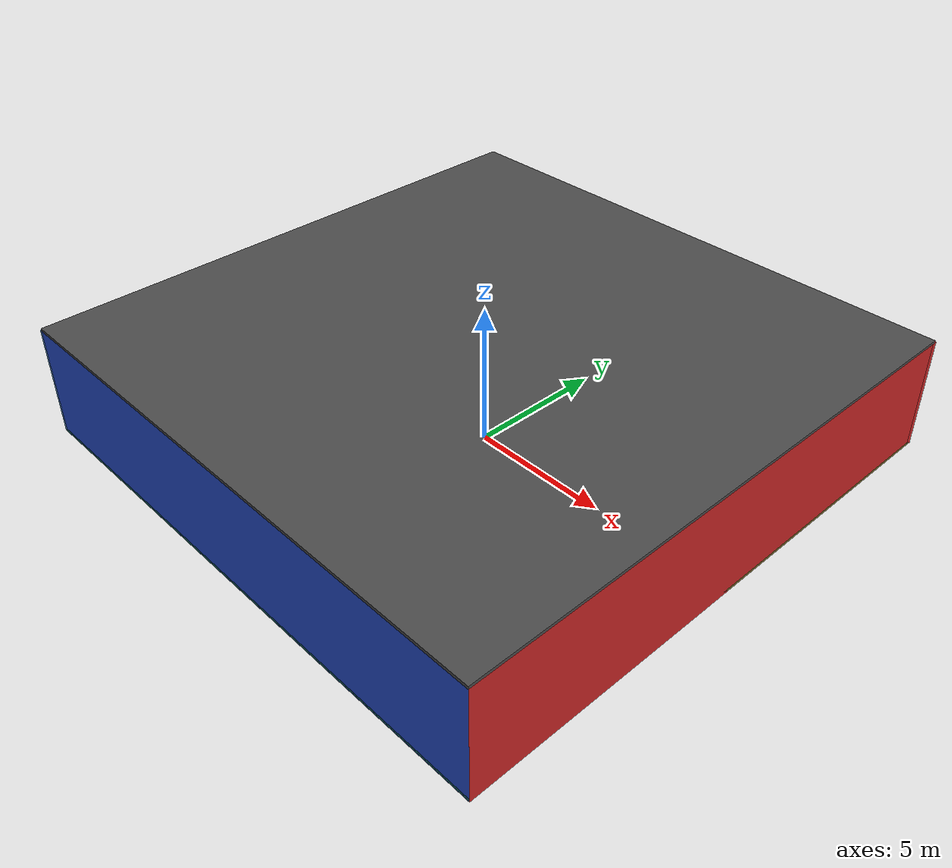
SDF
<sdf version="1.4">
 <world name="default">
  <physics type="ode">
   <max_step_size>0.001</max_step_size>
   <real_time_factor>1</real_time_factor>
   <real_time_update_rate>1000</real_time_update_rate>
   <gravity>0 0 -9.8</gravity>
  </physics>
  <scene><ambient>0.4 0.4 0.4 1</ambient><background>0.7 0.7 0.7 1</background><shadows>1</shadows></scene>
  <model name="Surrounding">
   <static>1</static>
   <link name="Ceiling">
    <collision name="Ceiling_Collision"><geometry><box><size>20 20 0.1</size></box></geometry></collision>
    <visual name="Ceiling_Visual">
     <geometry><box><size>20 20 0.1</size></box></geometry>
     <material>
      <script><uri>file://media/materials/scripts/gazebo.material</uri><name>Gazebo/DarkGrey</name></script>
     </material>
    </visual>
    <pose>0 0 4.05 0 0 0</pose>
   </link>
   <link name="Wall_South">
    <collision name="Wall_South_Collision">
     <geometry><box><size>20 0 4</size></box></geometry>
     <pose>0 0 2 0 -0 0</pose>
    </collision>
    <visual name="Wall_South_Visual">
     <pose>0 0 2 0 -0 0</pose>
     <geometry><box><size>20 0 4</size></box></geometry>
     <material>
      <script><uri>file://media/materials/scripts/gazebo.material</uri><name>Gazebo/BlueGlow</name></script>
     </material>
    </visual>
    <velocity_decay><linear>0</linear><angular>0</angular></velocity_decay>
    <pose>0 -10 0 0 -0 0</pose>
   </link>
   <link name="Wall_East">
    <collision name="Wall_21_Collision">
     <geometry><box><size>20 0 4</size></box></geometry>
     <pose>0 0 2 0 -0 0</pose>
    </collision>
    <visual name="Wall_21_Visual">
     <pose>0 0 2 0 -0 0</pose>
     <geometry><box><size>20 0 4</size></box></geometry>
     <material>
      <script><uri>file://media/materials/scripts/gazebo.material</uri><name>Gazebo/Red</name></script>
     </material>
    </visual>
    <velocity_decay><linear>0</linear><angular>0</angular></velocity_decay>
    <pose>10 0 0 0 -0 1.5708</pose>
   </link>
   <link name="Wall_North">
    <collision name="Wall_22_Collision">
     <geometry><box><size>20 0.2 4</size></box></geometry>
     <pose>0 0 2 0 -0 0</pose>
    </collision>
    <visual name="Wall_22_Visual">
     <pose>0 0 2 0 -0 0</pose>
     <geometry><box><size>20 0.2 4</size></box></geometry>
     <material>
      <script><uri>file://media/materials/scripts/gazebo.material</uri><name>Gazebo/RedGlow</name></script>
     </material>
    </visual>
    <velocity_decay><linear>0</linear><angular>0</angular></velocity_decay>
    <pose>0 10 0 0 -0 0</pose>
   </link>
   <link name="Wall_West">
    <collision name="Wall_23_Collision">
     <geometry><box><size>20 0.2 4</size></box></geometry>
     <pose>0 0 2 0 -0 0</pose>
    </collision>
    <visual name="Wall_23_Visual">
     <pose>0 0 2 0 -0 0</pose>
     <geometry><box><size>20 0.2 4</size></box></geometry>
     <material>
      <script><uri>file://media/materials/scripts/gazebo.material</uri><name>Gazebo/SkyBlue</name></script>
     </material>
    </visual>
    <velocity_decay><linear>0</linear><angular>0</angular></velocity_decay>
    <pose>-10 0 0 0 0 -1.5708</pose>
   </link>
   <link name="Ground_link">
    <collision name="collision">
     <pose>0 0 .05 0 -0 0</pose>
     <geometry><box><size>20 20 0.1</size></box></geometry>
    </collision>
    <visual name="visual">
     <pose>0 0 .05 0 -0 0</pose>
     <geometry><box><size>20 20 0.1</size></box></geometry>
     <material>
      <script><uri>file://media/materials/scripts/gazebo.material</uri><name>Gazebo/GreenTransparent</name></script>
     </material>
    </visual>
   </link>
   <static>1</static>
  </model>
  <spherical_coordinates>
   <surface_model>EARTH_WGS84</surface_model>
   <latitude_deg>0</latitude_deg>
   <longitude_deg>0</longitude_deg>
   <elevation>0</elevation>
   <heading_deg>0</heading_deg>
  </spherical_coordinates>
  <light name="lightball_0" type="diffuse">
   <diffuse>0.8 0.8 0.8 1</diffuse>
   <specular>0.2 0.2 0.2 1</specular>
   <attenuation>
    <range>100</range>
    <constant>0.7</constant>
    <linear>0.01</linear>
    <quadratic>0.001</quadratic>
   </attenuation>
   <direction>-0.5 0.1 -0.9</direction>
   <pose>1.65047514434 3.78803597464 2.23475834347 0 0 0</pose>
  </light>
  <light name="lightball_1" type="diffuse">
   <diffuse>0.8 0.8 0.8 1</diffuse>
   <specular>0.2 0.2 0.2 1</specular>
   <attenuation>
    <range>100</range>
    <constant>0.7</constant>
    <linear>0.01</linear>
    <quadratic>0.001</quadratic>
   </attenuation>
   <direction>-0.5 0.1 -0.9</direction>
   <pose>-0.265813551767 -7.98051999827 2.76793427262 0 0 0</pose>
  </light>
  <light name="lightball_2" type="diffuse">
   <diffuse>0.8 0.8 0.8 1</diffuse>
   <specular>0.2 0.2 0.2 1</specular>
   <attenuation>
    <range>100</range>
    <constant>0.7</constant>
    <linear>0.01</linear>
    <quadratic>0.001</quadratic>
   </attenuation>
   <direction>-0.5 0.1 -0.9</direction>
   <pose>-0.300692417255 5.17958742068 1.31801643907 0 0 0</pose>
  </light>
  <light name="lightball_3" type="diffuse">
   <diffuse>0.8 0.8 0.8 1</diffuse>
   <specular>0.2 0.2 0.2 1</specular>
   <attenuation>
    <range>100</range>
    <constant>0.7</constant>
    <linear>0.01</linear>
    <quadratic>0.001</quadratic>
   </attenuation>
   <direction>-0.5 0.1 -0.9</direction>
   <pose>3.8616552153 4.55912577728 0.796236176381 0 0 0</pose>
  </light>
  <include>
   <uri>model://robocup_3Dsim_goal</uri>
   <pose>-7.74966311098 4.77276498699 0 0 0 2.1125543433</pose>
  </include>
  <include>
   <uri>model://robocup_3Dsim_goal</uri>
   <pose>-4.81009696312 -1.66339641025 0 0 0 0.193872763466</pose>
  </include>
  <include><uri>model://cabinet</uri><pose>-0.740896016426 4.40596961683 0 0 0 1.68561906483</pose></include>
  <include><uri>model://cabinet</uri><pose>1.66308980976 1.47978092319 0 0 0 0.23960747745</pose></include>
  <include>
   <uri>model://robocup_3Dsim_goal</uri>
   <pose>7.42109193075 -1.48376742295 0 0 0 2.10107570779</pose>
  </include>
 </world>
</sdf>

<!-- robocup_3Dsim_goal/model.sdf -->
<sdf version="1.5">
  <model name="robocup_3d_goal">
    <static>true</static>
    <link name="left_post">
      <pose>0 1.05 0.45 0 0 0</pose>
      <collision name="collision">
        <geometry>
          <cylinder>
            <radius>0.05</radius>
            <length>0.9</length>
          </cylinder>
        </geometry>
      </collision>
      <visual name="visual">
        <geometry>
          <cylinder>
            <radius>0.05</radius>
            <length>0.9</length>
          </cylinder>
        </geometry>
        <material>
          <script>
            <uri>file://media/materials/scripts/gazebo.material</uri>
            <name>Gazebo/ZincYellow</name>
          </script>
        </material>
      </visual>
    </link>
    <link name="left_support_horiz_lower">
      <pose>0.30 1.05 0.01 0 0 0</pose>
      <collision name="collision">
        <geometry>
          <box>
            <size>0.50 0.02 0.02</size>
          </box>
        </geometry>
      </collision>
      <visual name="visual">
        <geometry>
          <box>
            <size>0.50 0.02 0.02</size>
          </box>
        </geometry>
        <material>
          <script>
            <uri>file://media/materials/scripts/gazebo.material</uri>
            <name>Gazebo/White</name>
          </script>
        </material>
      </visual>
    </link>
    <link name="left_support_horiz_upper">
      <pose>0.30 1.05 0.79 0 0 0</pose>
      <collision name="collision">
        <geometry>
          <box>
            <size>0.50 0.02 0.02</size>
          </box>
        </geometry>
      </collision>
      <visual name="visual">
        <geometry>
          <box>
            <size>0.50 0.02 0.02</size>
          </box>
        </geometry>
        <material>
          <script>
            <uri>file://media/materials/scripts/gazebo.material</uri>
            <name>Gazebo/White</name>
          </script>
        </material>
      </visual>
    </link>
    <link name="left_support_vertical">
      <pose>0.56 1.05 0.4 0 1.5708 0</pose>
      <collision name="collision">
        <geometry>
          <box>
            <size>0.80 0.02 0.02</size>
          </box>
        </geometry>
      </collision>
      <visual name="visual">
        <geometry>
          <box>
            <size>0.80 0.02 0.02</size>
          </box>
        </geometry>
        <material>
          <script>
            <uri>file://media/materials/scripts/gazebo.material</uri>
            <name>Gazebo/White</name>
          </script>
        </material>
      </visual>
    </link>
    <link name="right_support_horiz_lower">
      <pose>0.30 -1.05 0.01 0 0 0</pose>
      <collision name="collision">
        <geometry>
          <box>
            <size>0.50 0.02 0.02</size>
          </box>
        </geometry>
      </collision>
      <visual name="visual">
        <geometry>
          <box>
            <size>0.50 0.02 0.02</size>
          </box>
        </geometry>
        <material>
          <script>
            <uri>file://media/materials/scripts/gazebo.material</uri>
            <name>Gazebo/White</name>
          </script>
        </material>
      </visual>
    </link>
    <link name="right_support_horiz_upper">
      <pose>0.30 -1.05 0.79 0 0 0</pose>
      <collision name="collision">
        <geometry>
          <box>
            <size>0.50 0.02 0.02</size>
          </box>
        </geometry>
      </collision>
      <visual name="visual">
        <geometry>
          <box>
            <size>0.50 0.02 0.02</size>
          </box>
        </geometry>
        <material>
          <script>
            <uri>file://media/materials/scripts/gazebo.material</uri>
            <name>Gazebo/White</name>
          </script>
        </material>
      </visual>
    </link>
    <link name="right_support_vertical">
      <pose>0.56 -1.05 0.4 0 1.5708 0</pose>
      <collision name="collision">
        <geometry>
          <box>
            <size>0.80 0.02 0.02</size>
          </box>
        </geometry>
      </collision>
      <visual name="visual">
        <geometry>
          <box>
            <size>0.80 0.02 0.02</size>
          </box>
        </geometry>
        <material>
          <script>
            <uri>file://media/materials/scripts/gazebo.material</uri>
            <name>Gazebo/White</name>
          </script>
        </material>
      </visual>
    </link>
    <link name="center_support_horiz_lower">
      <pose>0.56 0 0.01 0 1.5708 0</pose>
      <collision name="collision">
        <geometry>
          <box>
            <size>0.02 2.08 0.02</size>
          </box>
        </geometry>
      </collision>
      <visual name="visual">
        <geometry>
          <box>
            <size>0.02 2.08 0.02</size>
          </box>
        </geometry>
        <material>
          <script>
            <uri>file://media/materials/scripts/gazebo.material</uri>
            <name>Gazebo/White</name>
          </script>
        </material>
      </visual>
    </link>
    <link name="center_support_horiz_upper">
      <pose>0.56 0 0.79 0 1.5708 0</pose>
      <collision name="collision">
        <geometry>
          <box>
            <size>0.02 2.08 0.02</size>
          </box>
        </geometry>
      </collision>
      <visual name="visual">
        <geometry>
          <box>
            <size>0.02 2.08 0.02</size>
          </box>
        </geometry>
        <material>
          <script>
            <uri>file://media/materials/scripts/gazebo.material</uri>
            <name>Gazebo/White</name>
          </script>
        </material>
      </visual>
    </link>
    <link name="right_post">
      <pose>0 -1.05 0.45 0 0 0</pose>
      <collision name="collision">
        <geometry>
          <cylinder>
            <radius>0.05</radius>
            <length>0.9</length>
          </cylinder>
        </geometry>
      </collision>
      <visual name="visual">
        <geometry>
          <cylinder>
            <radius>0.05</radius>
            <length>0.9</length>
          </cylinder>
        </geometry>
        <material>
          <script>
            <uri>file://media/materials/scripts/gazebo.material</uri>
            <name>Gazebo/ZincYellow</name>
          </script>
        </material>
      </visual>
    </link>
    <link name="crossbar">
      <pose>0 0 0.85 1.57 1.57 0</pose>
      <collision name="collision">
        <geometry>
          <cylinder>
            <radius>0.05</radius>
            <length>2.0</length>
          </cylinder>
        </geometry>
      </collision>
      <visual name="visual">
        <geometry>
          <cylinder>
            <radius>0.05</radius>
            <length>2.0</length>
          </cylinder>
        </geometry>
        <material>
          <script>
            <uri>file://media/materials/scripts/gazebo.material</uri>
            <name>Gazebo/ZincYellow</name>
          </script>
        </material>
      </visual>
    </link>
    <link name="center_net">
      <pose>0.56 0 0.40 0 0 0</pose>
      <collision name="collision">
        <geometry>
          <box>
            <size>0.01 2.1 0.80</size>
          </box>
        </geometry>
      </collision>
      <visual name="visual">
        <geometry>
          <box>
            <size>0.01 2.1 0.80</size>
          </box>
        </geometry>
        <material>
          <script>
            <uri>model://../model_source/models/robocup09_spl_field/materials/scripts/</uri>
            <uri>model://../model_source/models/robocup09_spl_field/materials/textures/</uri>
            <name>RoboCup/Net</name>
          </script>
        </material>
      </visual>
    </link>
    <link name="left_net">
      <pose>0.30 1.05 0.40 0 0 0</pose>
      <collision name="collision">
        <geometry>
          <box>
            <size>0.50 0.01 0.76</size>
          </box>
        </geometry>
      </collision>
      <visual name="visual">
        <geometry>
          <box>
            <size>0.50 0.01 0.76</size>
          </box>
        </geometry>
        <material>
          <script>
            <uri>model://../model_source/models/robocup09_spl_field/materials/scripts/</uri>
            <uri>model://../model_source/models/robocup09_spl_field/materials/textures/</uri>
            <name>RoboCup/Net</name>
          </script>
        </material>
      </visual>
    </link>
    <link name="right_net">
      <pose>0.30 -1.05 0.40 0 0 0</pose>
      <collision name="collision">
        <geometry>
          <box>
            <size>0.50 0.01 0.76</size>
          </box>
        </geometry>
      </collision>
      <visual name="visual">
        <geometry>
          <box>
            <size>0.50 0.01 0.76</size>
          </box>
        </geometry>
        <material>
          <script>
            <uri>model://../model_source/models/robocup09_spl_field/materials/scripts/</uri>
            <uri>model://../model_source/models/robocup09_spl_field/materials/textures/</uri>
            <name>RoboCup/Net</name>
          </script>
        </material>
      </visual>
    </link>
  </model>
</sdf>

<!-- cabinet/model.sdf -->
<sdf version="1.5">
  <model name="cabinet">
    <static>true</static>
    <link name="cabinet_bottom_plate">
      <inertial>
        <pose>0 0 -1 0 0 0</pose>
        <inertia>
          <ixx>2.050000</ixx>
          <ixy>0</ixy>
          <ixz>0</ixz>
          <iyy>2.050000</iyy>
          <iyz>0</iyz>
          <izz>2.050000</izz>
        </inertia>
        <mass>25.000000</mass>
      </inertial>
      <collision name="cabinet_bottom_plate_geom">
        <pose>0 0 0.010000 0 0 0</pose>
        <geometry>
          <box>
            <size>0.450000 0.450000 0.020000</size>
          </box>
        </geometry>
      </collision>
      <visual name="cabinet_bottom_plate_geom_visual">
        <pose>0 0 0.010000 0 0 0</pose>
        <geometry>
          <box>
            <size>0.450000 0.450000 0.020000</size>
          </box>
        </geometry>
        <material>
          <script>
            <uri>model://media/materials/scripts/gazebo.material</uri>
            <name>Gazebo/Wood</name>
          </script>
        </material>
      </visual>
      <collision name="cabinet_bottom_plate_geom_cabinet_back_plate">
        <pose>0.235000 0 0.510000 0 0 0</pose>
        <geometry>
          <box>
            <size>0.020000 0.450000 1.020000</size>
          </box>
        </geometry>
      </collision>
      <visual name="cabinet_bottom_plate_geom_cabinet_back_plate_visual">
        <pose>0.235000 0 0.510000 0 0 0</pose>
        <geometry>
          <box>
            <size>0.020000 0.450000 1.020000</size>
          </box>
        </geometry>
        <material>
          <script>
            <uri>model://media/materials/scripts/gazebo.material</uri>
            <name>Gazebo/Wood</name>
          </script>
        </material>
      </visual>
      <collision name="cabinet_bottom_plate_geom_cabinet_left_plate">
        <pose>0 0.235000 0.510000 0 0 0</pose>
        <geometry>
          <box>
            <size>0.450000 0.020000 1.020000</size>
          </box>
        </geometry>
      </collision>
      <visual name="cabinet_bottom_plate_geom_cabinet_left_plate_visual">
        <pose>0 0.235000 0.510000 0 0 0</pose>
        <geometry>
          <box>
            <size>0.450000 0.020000 1.020000</size>
          </box>
        </geometry>
        <material>
          <script>
            <uri>model://media/materials/scripts/gazebo.material</uri>
            <name>Gazebo/Wood</name>
          </script>
        </material>
      </visual>
      <collision name="cabinet_bottom_plate_geom_cabinet_middle_plate">
        <pose>0 0 0.510000 0 0 0</pose>
        <geometry>
          <box>
            <size>0.450000 0.450000 0.020000</size>
          </box>
        </geometry>
      </collision>
      <visual name="cabinet_bottom_plate_geom_cabinet_middle_plate_visual">
        <pose>0 0 0.510000 0 0 0</pose>
        <geometry>
          <box>
            <size>0.450000 0.450000 0.020000</size>
          </box>
        </geometry>
        <material>
          <script>
            <uri>model://media/materials/scripts/gazebo.material</uri>
            <name>Gazebo/Wood</name>
          </script>
        </material>
      </visual>
      <collision name="cabinet_bottom_plate_geom_cabinet_right_plate">
        <pose>0 -0.235000 0.510000 0 0 0</pose>
        <geometry>
          <box>
            <size>0.450000 0.020000 1.020000</size>
          </box>
        </geometry>
      </collision>
      <visual name="cabinet_bottom_plate_geom_cabinet_right_plate_visual">
        <pose>0 -0.235000 0.510000 0 0 0</pose>
        <geometry>
          <box>
            <size>0.450000 0.020000 1.020000</size>
          </box>
        </geometry>
        <material>
          <script>
            <uri>model://media/materials/scripts/gazebo.material</uri>
            <name>Gazebo/Wood</name>
          </script>
        </material>
      </visual>
      <collision name="cabinet_bottom_plate_geom_cabinet_top_plate">
        <pose>0 0 1.010000 0 0 0</pose>
        <geometry>
          <box>
            <size>0.450000 0.450000 0.020000</size>
          </box>
        </geometry>
      </collision>
      <visual name="cabinet_bottom_plate_geom_cabinet_top_plate_visual">
        <pose>0 0 1.010000 0 0 0</pose>
        <geometry>
          <box>
            <size>0.450000 0.450000 0.020000</size>
          </box>
        </geometry>
        <material>
          <script>
            <uri>model://media/materials/scripts/gazebo.material</uri>
            <name>Gazebo/Wood</name>
          </script>
        </material>
      </visual>
    </link>
  </model>
</sdf>
